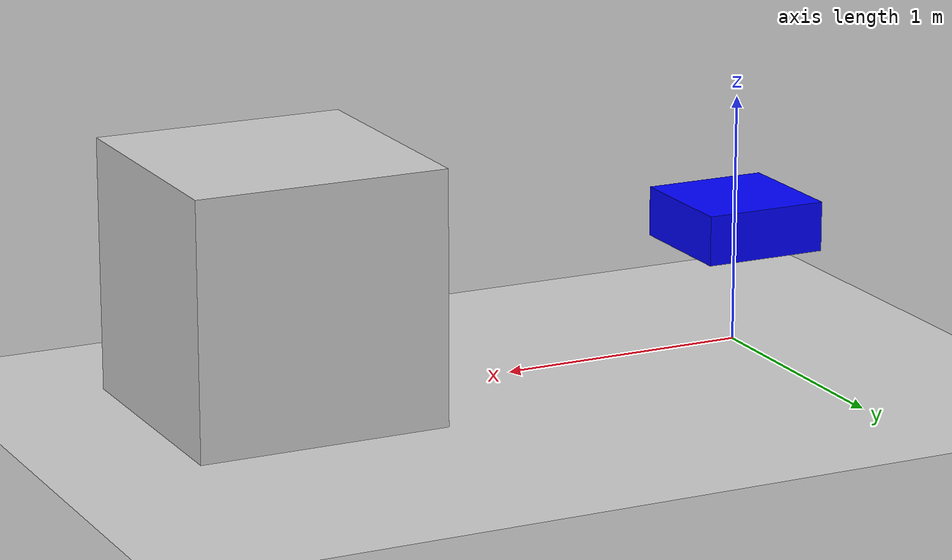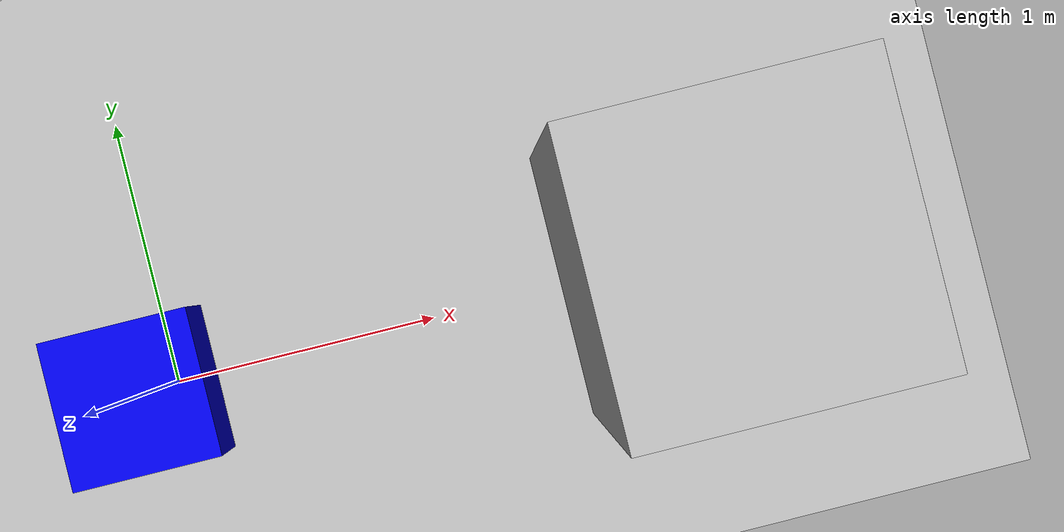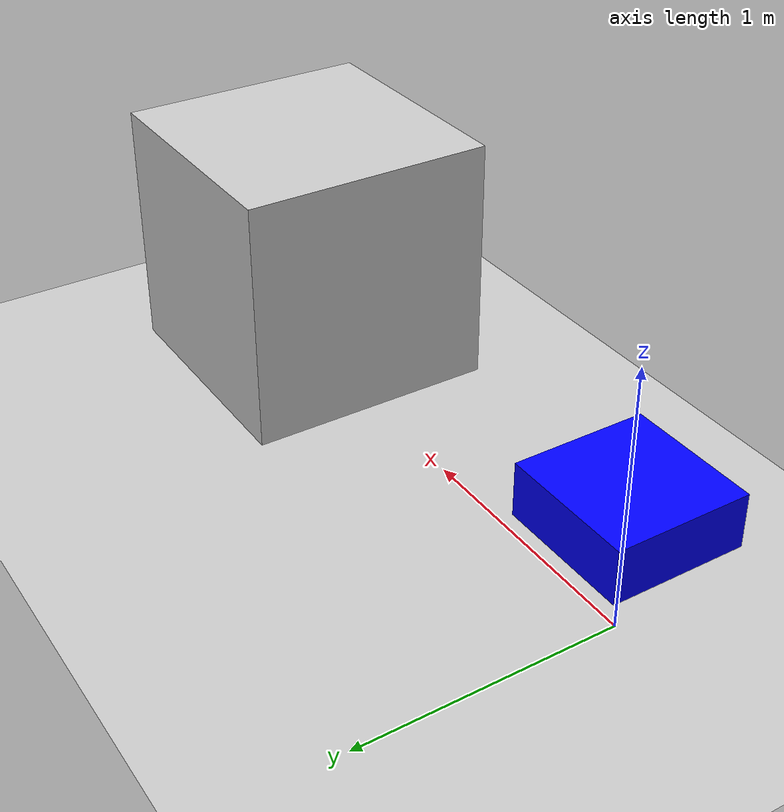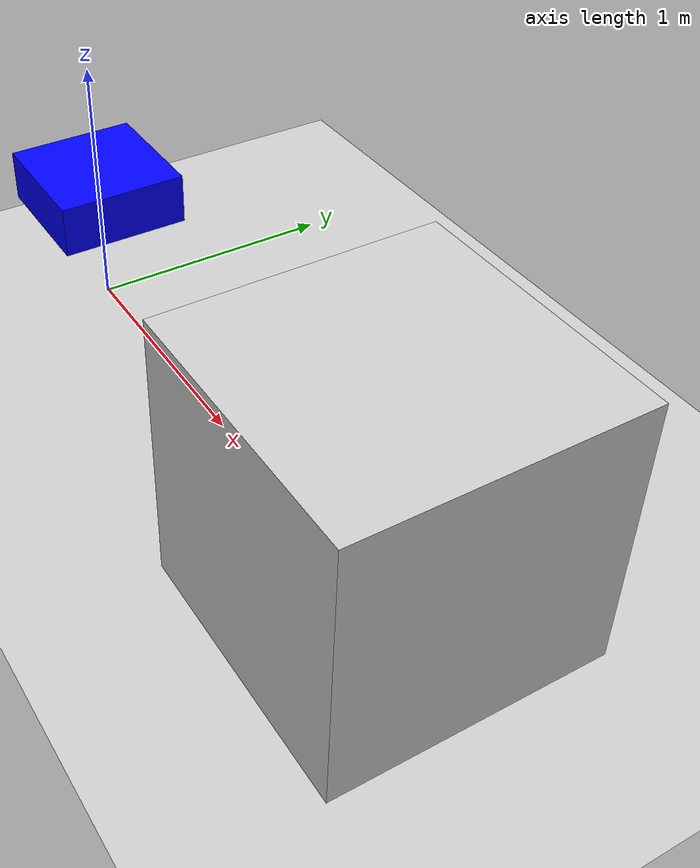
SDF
<?xml version="1.0" ?>
<sdf version="1.7">
  <world name="simple_robot_world">
    <!-- Include the outdoor environment -->
    <include>
      <uri>model://ground_plane</uri>
    </include>

    <include>
      <uri>model://sun</uri>
    </include>

    <!-- Simple box obstacle -->
    <model name="box_obstacle">
      <pose>2 0 0.5 0 0 0</pose>
      <link name="link">
        <collision name="collision">
          <geometry>
            <box>
              <size>1 1 1</size>
            </box>
          </geometry>
        </collision>
        <visual name="visual">
          <geometry>
            <box>
              <size>1 1 1</size>
            </box>
          </geometry>
          <material>
            <ambient>0.5 0.5 0.5 1</ambient>
            <diffuse>0.8 0.8 0.8 1</diffuse>
            <specular>0.1 0.1 0.1 1</specular>
          </material>
        </visual>
        <inertial>
          <mass>1.0</mass>
          <inertia>
            <ixx>0.166667</ixx>
            <ixy>0</ixy>
            <ixz>0</ixz>
            <iyy>0.166667</iyy>
            <iyz>0</iyz>
            <izz>0.166667</izz>
          </inertia>
        </inertial>
      </link>
    </model>

    <!-- Simple robot model -->
    <model name="simple_robot">
      <pose>0 0 0.5 0 0 0</pose>
      <link name="chassis">
        <collision name="collision">
          <geometry>
            <box>
              <size>0.5 0.5 0.2</size>
            </box>
          </geometry>
        </collision>
        <visual name="visual">
          <geometry>
            <box>
              <size>0.5 0.5 0.2</size>
            </box>
          </geometry>
          <material>
            <ambient>0 0 1 1</ambient>
            <diffuse>0 0 1 1</diffuse>
            <specular>0.1 0.1 0.1 1</specular>
          </material>
        </visual>
        <inertial>
          <mass>1.0</mass>
          <inertia>
            <ixx>0.041667</ixx>
            <ixy>0</ixy>
            <ixz>0</ixz>
            <iyy>0.041667</iyy>
            <iyz>0</iyz>
            <izz>0.083333</izz>
          </inertia>
        </inertial>
      </link>

      <!-- Simple sensor -->
      <sensor name="simple_camera" type="camera">
        <pose>0.25 0 0 0 0 0</pose>
        <camera name="camera">
          <horizontal_fov>1.047</horizontal_fov>
          <image>
            <width>320</width>
            <height>240</height>
          </image>
          <clip>
            <near>0.1</near>
            <far>10</far>
          </clip>
        </camera>
      </sensor>
    </model>

    <!-- Physics parameters -->
    <physics name="default_physics" default="0" type="ode">
      <gravity>0 0 -9.8</gravity>
      <max_step_size>0.001</max_step_size>
      <real_time_factor>1</real_time_factor>
      <real_time_update_rate>1000</real_time_update_rate>
    </physics>
  </world>
</sdf>
